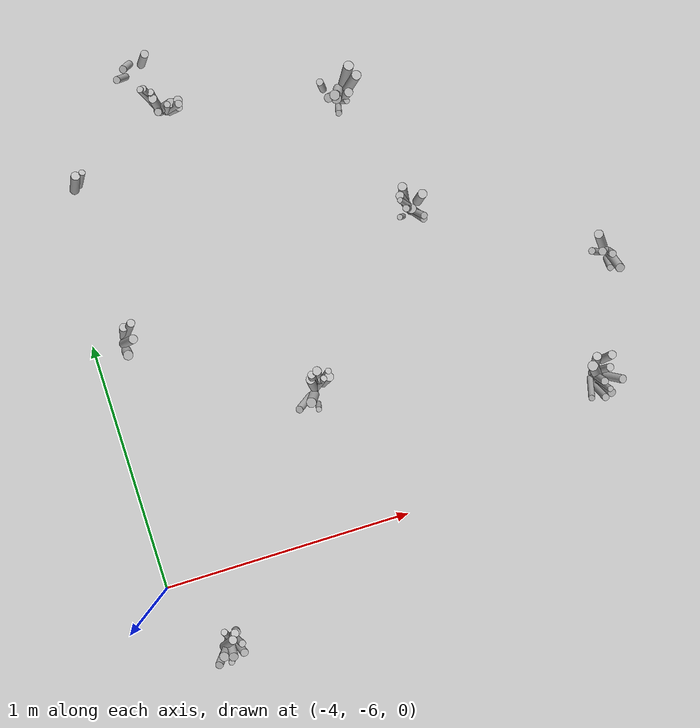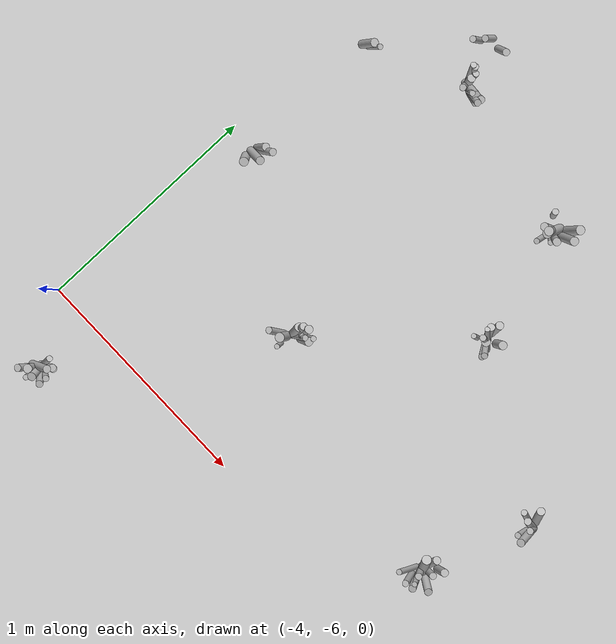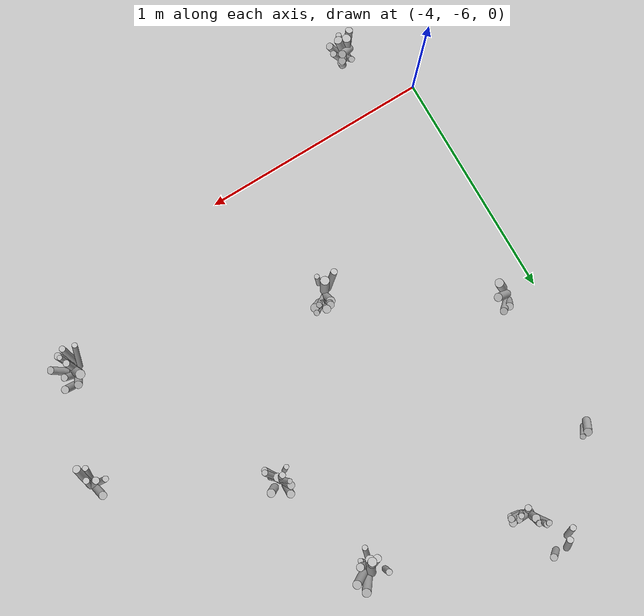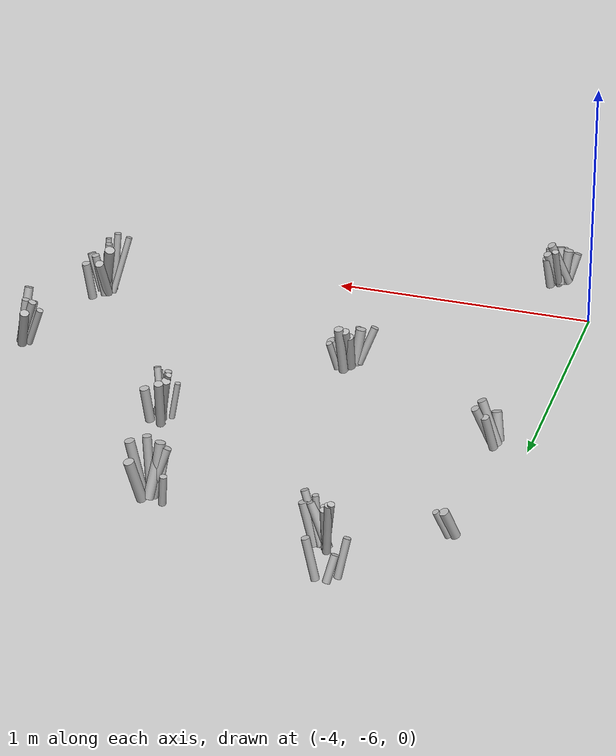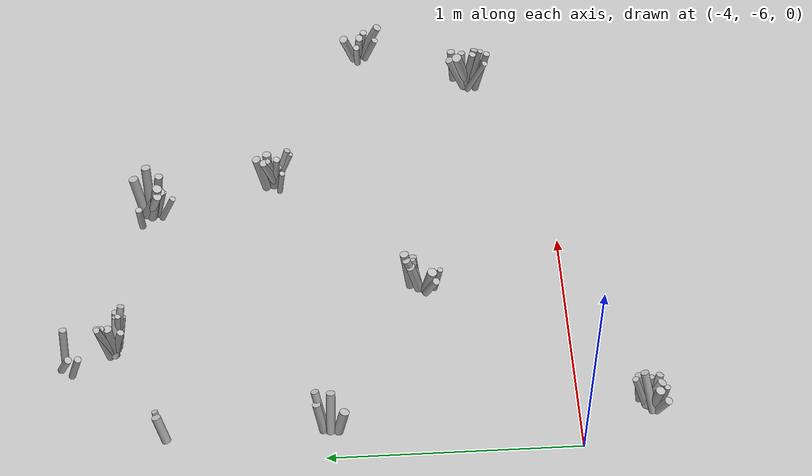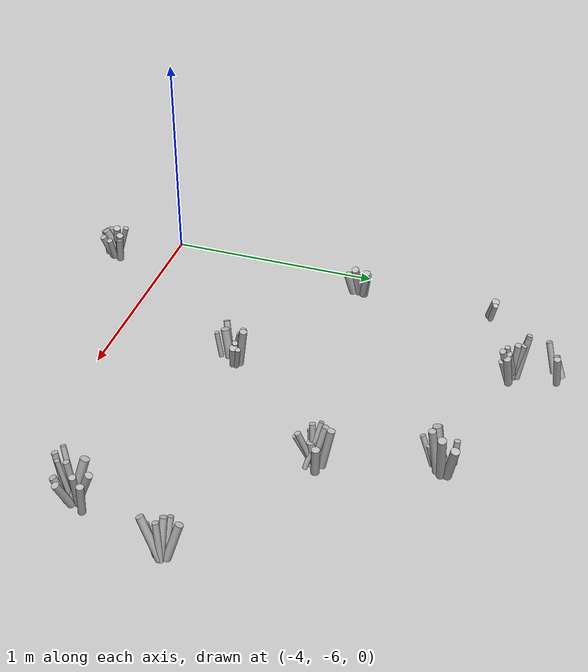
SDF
<sdf version="1.6">
 <world name="default">
  <model name="tussocks">
   <static>true</static>
   <link name="tuft19_0">
    <pose>-3.4690 -4.1610 0.0887 0 0.2247 1.6480</pose>
    <visual name="tuft19_0_v">
     <geometry><cylinder><radius>0.0136</radius><length>0.1928</length></cylinder></geometry>
     <material>
      <script>
       <uri>model://bushfire/materials/scripts</uri>
       <uri>model://bushfire/materials/textures</uri>
       <name>Bushfire/Foliage2</name>
      </script>
     </material>
    </visual>
   </link>
   <link name="tuft19_1">
    <pose>-3.4125 -4.2042 0.0995 0 0.3429 5.9019</pose>
    <visual name="tuft19_1_v">
     <geometry><cylinder><radius>0.0146</radius><length>0.2164</length></cylinder></geometry>
     <material>
      <script>
       <uri>model://bushfire/materials/scripts</uri>
       <uri>model://bushfire/materials/textures</uri>
       <name>Bushfire/Tussock</name>
      </script>
     </material>
    </visual>
   </link>
   <link name="tuft19_2">
    <pose>-3.4093 -4.2093 0.0696 0 0.3615 5.8465</pose>
    <visual name="tuft19_2_v">
     <geometry><cylinder><radius>0.0135</radius><length>0.1512</length></cylinder></geometry>
     <material>
      <script>
       <uri>model://bushfire/materials/scripts</uri>
       <uri>model://bushfire/materials/textures</uri>
       <name>Bushfire/Tussock</name>
      </script>
     </material>
    </visual>
   </link>
   <link name="tuft19_3">
    <pose>-3.4843 -4.1446 0.1037 0 0.1888 1.9952</pose>
    <visual name="tuft19_3_v">
     <geometry><cylinder><radius>0.0148</radius><length>0.2255</length></cylinder></geometry>
     <material>
      <script>
       <uri>model://bushfire/materials/scripts</uri>
       <uri>model://bushfire/materials/textures</uri>
       <name>Bushfire/Foliage2</name>
      </script>
     </material>
    </visual>
   </link>
   <link name="tuft19_4">
    <pose>-3.4671 -4.1962 0.0716 0 0.2293 4.7298</pose>
    <visual name="tuft19_4_v">
     <geometry><cylinder><radius>0.0144</radius><length>0.1557</length></cylinder></geometry>
     <material>
      <script>
       <uri>model://bushfire/materials/scripts</uri>
       <uri>model://bushfire/materials/textures</uri>
       <name>Bushfire/Foliage2</name>
      </script>
     </material>
    </visual>
   </link>
   <link name="tuft19_5">
    <pose>-3.4333 -4.2000 0.0934 0 0.1258 5.8017</pose>
    <visual name="tuft19_5_v">
     <geometry><cylinder><radius>0.0121</radius><length>0.2029</length></cylinder></geometry>
     <material>
      <script>
       <uri>model://bushfire/materials/scripts</uri>
       <uri>model://bushfire/materials/textures</uri>
       <name>Bushfire/Foliage2</name>
      </script>
     </material>
    </visual>
   </link>
   <link name="tuft19_6">
    <pose>-3.4422 -4.1890 0.0843 0 0.4013 6.0208</pose>
    <visual name="tuft19_6_v">
     <geometry><cylinder><radius>0.0174</radius><length>0.1832</length></cylinder></geometry>
     <material>
      <script>
       <uri>model://bushfire/materials/scripts</uri>
       <uri>model://bushfire/materials/textures</uri>
       <name>Bushfire/Foliage2</name>
      </script>
     </material>
    </visual>
   </link>
   <link name="tuft19_7">
    <pose>-3.4010 -4.1928 0.0802 0 0.2566 6.1247</pose>
    <visual name="tuft19_7_v">
     <geometry><cylinder><radius>0.0171</radius><length>0.1744</length></cylinder></geometry>
     <material>
      <script>
       <uri>model://bushfire/materials/scripts</uri>
       <uri>model://bushfire/materials/textures</uri>
       <name>Bushfire/Foliage2</name>
      </script>
     </material>
    </visual>
   </link>
   <link name="tuft19_8">
    <pose>-3.4684 -4.1744 0.0861 0 0.1007 1.7116</pose>
    <visual name="tuft19_8_v">
     <geometry><cylinder><radius>0.0171</radius><length>0.1871</length></cylinder></geometry>
     <material>
      <script>
       <uri>model://bushfire/materials/scripts</uri>
       <uri>model://bushfire/materials/textures</uri>
       <name>Bushfire/Tussock</name>
      </script>
     </material>
    </visual>
   </link>
   <link name="tuft19_9">
    <pose>-3.4860 -4.1522 0.1076 0 0.2693 2.1266</pose>
    <visual name="tuft19_9_v">
     <geometry><cylinder><radius>0.0129</radius><length>0.2338</length></cylinder></geometry>
     <material>
      <script>
       <uri>model://bushfire/materials/scripts</uri>
       <uri>model://bushfire/materials/textures</uri>
       <name>Bushfire/Foliage2</name>
      </script>
     </material>
    </visual>
   </link>
   <link name="tuft53_0">
    <pose>-2.1066 -5.6750 0.0812 0 0.1885 0.1733</pose>
    <visual name="tuft53_0_v">
     <geometry><cylinder><radius>0.0151</radius><length>0.1765</length></cylinder></geometry>
     <material>
      <script>
       <uri>model://bushfire/materials/scripts</uri>
       <uri>model://bushfire/materials/textures</uri>
       <name>Bushfire/Foliage2</name>
      </script>
     </material>
    </visual>
   </link>
   <link name="tuft53_1">
    <pose>-2.1301 -5.6504 0.0819 0 0.3875 1.4259</pose>
    <visual name="tuft53_1_v">
     <geometry><cylinder><radius>0.0172</radius><length>0.1780</length></cylinder></geometry>
     <material>
      <script>
       <uri>model://bushfire/materials/scripts</uri>
       <uri>model://bushfire/materials/textures</uri>
       <name>Bushfire/Tussock</name>
      </script>
     </material>
    </visual>
   </link>
   <link name="tuft53_2">
    <pose>-2.1248 -5.7283 0.1014 0 0.1930 4.9093</pose>
    <visual name="tuft53_2_v">
     <geometry><cylinder><radius>0.0111</radius><length>0.2204</length></cylinder></geometry>
     <material>
      <script>
       <uri>model://bushfire/materials/scripts</uri>
       <uri>model://bushfire/materials/textures</uri>
       <name>Bushfire/Foliage2</name>
      </script>
     </material>
    </visual>
   </link>
   <link name="tuft53_3">
    <pose>-2.1386 -5.6742 0.1061 0 0.3215 2.2075</pose>
    <visual name="tuft53_3_v">
     <geometry><cylinder><radius>0.0200</radius><length>0.2307</length></cylinder></geometry>
     <material>
      <script>
       <uri>model://bushfire/materials/scripts</uri>
       <uri>model://bushfire/materials/textures</uri>
       <name>Bushfire/Foliage2</name>
      </script>
     </material>
    </visual>
   </link>
   <link name="tuft53_4">
    <pose>-2.1331 -5.6994 0.0976 0 0.1511 4.7796</pose>
    <visual name="tuft53_4_v">
     <geometry><cylinder><radius>0.0146</radius><length>0.2122</length></cylinder></geometry>
     <material>
      <script>
       <uri>model://bushfire/materials/scripts</uri>
       <uri>model://bushfire/materials/textures</uri>
       <name>Bushfire/Foliage2</name>
      </script>
     </material>
    </visual>
   </link>
   <link name="tuft53_5">
    <pose>-2.1758 -5.7300 0.1082 0 0.3455 4.0229</pose>
    <visual name="tuft53_5_v">
     <geometry><cylinder><radius>0.0120</radius><length>0.2352</length></cylinder></geometry>
     <material>
      <script>
       <uri>model://bushfire/materials/scripts</uri>
       <uri>model://bushfire/materials/textures</uri>
       <name>Bushfire/Tussock</name>
      </script>
     </material>
    </visual>
   </link>
   <link name="tuft53_6">
    <pose>-2.1466 -5.7528 0.1074 0 0.1777 4.5464</pose>
    <visual name="tuft53_6_v">
     <geometry><cylinder><radius>0.0136</radius><length>0.2336</length></cylinder></geometry>
     <material>
      <script>
       <uri>model://bushfire/materials/scripts</uri>
       <uri>model://bushfire/materials/textures</uri>
       <name>Bushfire/Tussock</name>
      </script>
     </material>
    </visual>
   </link>
   <link name="tuft53_7">
    <pose>-2.0750 -5.6360 0.0727 0 0.1487 0.6355</pose>
    <visual name="tuft53_7_v">
     <geometry><cylinder><radius>0.0166</radius><length>0.1581</length></cylinder></geometry>
     <material>
      <script>
       <uri>model://bushfire/materials/scripts</uri>
       <uri>model://bushfire/materials/textures</uri>
       <name>Bushfire/Tussock</name>
      </script>
     </material>
    </visual>
   </link>
   <link name="tuft53_8">
    <pose>-2.0787 -5.7152 0.0710 0 0.4108 5.7185</pose>
    <visual name="tuft53_8_v">
     <geometry><cylinder><radius>0.0165</radius><length>0.1544</length></cylinder></geometry>
     <material>
      <script>
       <uri>model://bushfire/materials/scripts</uri>
       <uri>model://bushfire/materials/textures</uri>
       <name>Bushfire/Tussock</name>
      </script>
     </material>
    </visual>
   </link>
   <link name="tuft53_9">
    <pose>-2.1133 -5.7477 0.0625 0 0.3578 5.0137</pose>
    <visual name="tuft53_9_v">
     <geometry><cylinder><radius>0.0161</radius><length>0.1358</length></cylinder></geometry>
     <material>
      <script>
       <uri>model://bushfire/materials/scripts</uri>
       <uri>model://bushfire/materials/textures</uri>
       <name>Bushfire/Foliage2</name>
      </script>
     </material>
    </visual>
   </link>
   <link name="tuft83_2">
    <pose>-3.8692 -5.0644 0.0524 0 0.2704 5.3184</pose>
    <visual name="tuft83_2_v">
     <geometry><cylinder><radius>0.0193</radius><length>0.1139</length></cylinder></geometry>
     <material>
      <script>
       <uri>model://bushfire/materials/scripts</uri>
       <uri>model://bushfire/materials/textures</uri>
       <name>Bushfire/Foliage2</name>
      </script>
     </material>
    </visual>
   </link>
   <link name="tuft83_4">
    <pose>-3.8474 -5.0243 0.0865 0 0.3546 6.2202</pose>
    <visual name="tuft83_4_v">
     <geometry><cylinder><radius>0.0177</radius><length>0.1881</length></cylinder></geometry>
     <material>
      <script>
       <uri>model://bushfire/materials/scripts</uri>
       <uri>model://bushfire/materials/textures</uri>
       <name>Bushfire/Tussock</name>
      </script>
     </material>
    </visual>
   </link>
   <link name="tuft83_7">
    <pose>-3.8561 -4.9831 0.0680 0 0.2706 0.7210</pose>
    <visual name="tuft83_7_v">
     <geometry><cylinder><radius>0.0165</radius><length>0.1479</length></cylinder></geometry>
     <material>
      <script>
       <uri>model://bushfire/materials/scripts</uri>
       <uri>model://bushfire/materials/textures</uri>
       <name>Bushfire/Tussock</name>
      </script>
     </material>
    </visual>
   </link>
   <link name="tuft83_9">
    <pose>-3.8369 -4.9839 0.0871 0 0.4037 0.5378</pose>
    <visual name="tuft83_9_v">
     <geometry><cylinder><radius>0.0159</radius><length>0.1893</length></cylinder></geometry>
     <material>
      <script>
       <uri>model://bushfire/materials/scripts</uri>
       <uri>model://bushfire/materials/textures</uri>
       <name>Bushfire/Tussock</name>
      </script>
     </material>
    </visual>
   </link>
   <link name="tuft91_1">
    <pose>-3.5417 -3.9868 0.0484 0 0.4017 4.1701</pose>
    <visual name="tuft91_1_v">
     <geometry><cylinder><radius>0.0149</radius><length>0.1053</length></cylinder></geometry>
     <material>
      <script>
       <uri>model://bushfire/materials/scripts</uri>
       <uri>model://bushfire/materials/textures</uri>
       <name>Bushfire/Tussock</name>
      </script>
     </material>
    </visual>
   </link>
   <link name="tuft91_3">
    <pose>-3.5717 -4.0301 0.0707 0 0.2847 4.1144</pose>
    <visual name="tuft91_3_v">
     <geometry><cylinder><radius>0.0140</radius><length>0.1537</length></cylinder></geometry>
     <material>
      <script>
       <uri>model://bushfire/materials/scripts</uri>
       <uri>model://bushfire/materials/textures</uri>
       <name>Bushfire/Tussock</name>
      </script>
     </material>
    </visual>
   </link>
   <link name="tuft91_8">
    <pose>-3.4687 -3.9854 0.0771 0 0.2230 6.1999</pose>
    <visual name="tuft91_8_v">
     <geometry><cylinder><radius>0.0156</radius><length>0.1676</length></cylinder></geometry>
     <material>
      <script>
       <uri>model://bushfire/materials/scripts</uri>
       <uri>model://bushfire/materials/textures</uri>
       <name>Bushfire/Foliage2</name>
      </script>
     </material>
    </visual>
   </link>
   <link name="tuft108_0">
    <pose>-2.6483 -4.8522 0.0956 0 0.1530 3.4770</pose>
    <visual name="tuft108_0_v">
     <geometry><cylinder><radius>0.0137</radius><length>0.2078</length></cylinder></geometry>
     <material>
      <script>
       <uri>model://bushfire/materials/scripts</uri>
       <uri>model://bushfire/materials/textures</uri>
       <name>Bushfire/Tussock</name>
      </script>
     </material>
    </visual>
   </link>
   <link name="tuft108_1">
    <pose>-2.6407 -4.8469 0.1030 0 0.4087 2.5271</pose>
    <visual name="tuft108_1_v">
     <geometry><cylinder><radius>0.0111</radius><length>0.2239</length></cylinder></geometry>
     <material>
      <script>
       <uri>model://bushfire/materials/scripts</uri>
       <uri>model://bushfire/materials/textures</uri>
       <name>Bushfire/Tussock</name>
      </script>
     </material>
    </visual>
   </link>
   <link name="tuft108_2">
    <pose>-2.6812 -4.8719 0.0680 0 0.1697 3.6361</pose>
    <visual name="tuft108_2_v">
     <geometry><cylinder><radius>0.0111</radius><length>0.1478</length></cylinder></geometry>
     <material>
      <script>
       <uri>model://bushfire/materials/scripts</uri>
       <uri>model://bushfire/materials/textures</uri>
       <name>Bushfire/Tussock</name>
      </script>
     </material>
    </visual>
   </link>
   <link name="tuft108_3">
    <pose>-2.6235 -4.8801 0.0823 0 0.4166 5.1492</pose>
    <visual name="tuft108_3_v">
     <geometry><cylinder><radius>0.0138</radius><length>0.1789</length></cylinder></geometry>
     <material>
      <script>
       <uri>model://bushfire/materials/scripts</uri>
       <uri>model://bushfire/materials/textures</uri>
       <name>Bushfire/Tussock</name>
      </script>
     </material>
    </visual>
   </link>
   <link name="tuft108_4">
    <pose>-2.5903 -4.8215 0.0652 0 0.1366 0.5171</pose>
    <visual name="tuft108_4_v">
     <geometry><cylinder><radius>0.0182</radius><length>0.1418</length></cylinder></geometry>
     <material>
      <script>
       <uri>model://bushfire/materials/scripts</uri>
       <uri>model://bushfire/materials/textures</uri>
       <name>Bushfire/Foliage2</name>
      </script>
     </material>
    </visual>
   </link>
   <link name="tuft108_5">
    <pose>-2.6488 -4.7926 0.0925 0 0.2001 1.7576</pose>
    <visual name="tuft108_5_v">
     <geometry><cylinder><radius>0.0172</radius><length>0.2010</length></cylinder></geometry>
     <material>
      <script>
       <uri>model://bushfire/materials/scripts</uri>
       <uri>model://bushfire/materials/textures</uri>
       <name>Bushfire/Foliage2</name>
      </script>
     </material>
    </visual>
   </link>
   <link name="tuft108_6">
    <pose>-2.6383 -4.8503 0.0573 0 0.1134 4.6621</pose>
    <visual name="tuft108_6_v">
     <geometry><cylinder><radius>0.0189</radius><length>0.1247</length></cylinder></geometry>
     <material>
      <script>
       <uri>model://bushfire/materials/scripts</uri>
       <uri>model://bushfire/materials/textures</uri>
       <name>Bushfire/Tussock</name>
      </script>
     </material>
    </visual>
   </link>
   <link name="tuft108_7">
    <pose>-2.6526 -4.8289 0.0929 0 0.3243 2.2012</pose>
    <visual name="tuft108_7_v">
     <geometry><cylinder><radius>0.0166</radius><length>0.2020</length></cylinder></geometry>
     <material>
      <script>
       <uri>model://bushfire/materials/scripts</uri>
       <uri>model://bushfire/materials/textures</uri>
       <name>Bushfire/Foliage2</name>
      </script>
     </material>
    </visual>
   </link>
   <link name="tuft108_8">
    <pose>-2.6217 -4.8754 0.0903 0 0.3350 5.2646</pose>
    <visual name="tuft108_8_v">
     <geometry><cylinder><radius>0.0134</radius><length>0.1964</length></cylinder></geometry>
     <material>
      <script>
       <uri>model://bushfire/materials/scripts</uri>
       <uri>model://bushfire/materials/textures</uri>
       <name>Bushfire/Foliage2</name>
      </script>
     </material>
    </visual>
   </link>
   <link name="tuft114_0">
    <pose>-2.7540 -4.3603 0.1064 0 0.1257 5.4304</pose>
    <visual name="tuft114_0_v">
     <geometry><cylinder><radius>0.0169</radius><length>0.2312</length></cylinder></geometry>
     <material>
      <script>
       <uri>model://bushfire/materials/scripts</uri>
       <uri>model://bushfire/materials/textures</uri>
       <name>Bushfire/Foliage2</name>
      </script>
     </material>
    </visual>
   </link>
   <link name="tuft114_1">
    <pose>-2.8295 -4.2868 0.0567 0 0.1007 2.4118</pose>
    <visual name="tuft114_1_v">
     <geometry><cylinder><radius>0.0138</radius><length>0.1232</length></cylinder></geometry>
     <material>
      <script>
       <uri>model://bushfire/materials/scripts</uri>
       <uri>model://bushfire/materials/textures</uri>
       <name>Bushfire/Foliage2</name>
      </script>
     </material>
    </visual>
   </link>
   <link name="tuft114_2">
    <pose>-2.7621 -4.3702 0.0630 0 0.2345 5.1103</pose>
    <visual name="tuft114_2_v">
     <geometry><cylinder><radius>0.0114</radius><length>0.1370</length></cylinder></geometry>
     <material>
      <script>
       <uri>model://bushfire/materials/scripts</uri>
       <uri>model://bushfire/materials/textures</uri>
       <name>Bushfire/Tussock</name>
      </script>
     </material>
    </visual>
   </link>
   <link name="tuft114_3">
    <pose>-2.7282 -4.2815 0.0829 0 0.2766 0.8062</pose>
    <visual name="tuft114_3_v">
     <geometry><cylinder><radius>0.0198</radius><length>0.1802</length></cylinder></geometry>
     <material>
      <script>
       <uri>model://bushfire/materials/scripts</uri>
       <uri>model://bushfire/materials/textures</uri>
       <name>Bushfire/Foliage2</name>
      </script>
     </material>
    </visual>
   </link>
   <link name="tuft114_4">
    <pose>-2.7867 -4.3469 0.1002 0 0.1840 4.1342</pose>
    <visual name="tuft114_4_v">
     <geometry><cylinder><radius>0.0195</radius><length>0.2178</length></cylinder></geometry>
     <material>
      <script>
       <uri>model://bushfire/materials/scripts</uri>
       <uri>model://bushfire/materials/textures</uri>
       <name>Bushfire/Tussock</name>
      </script>
     </material>
    </visual>
   </link>
   <link name="tuft114_5">
    <pose>-2.7807 -4.3405 0.0915 0 0.3707 4.3267</pose>
    <visual name="tuft114_5_v">
     <geometry><cylinder><radius>0.0198</radius><length>0.1988</length></cylinder></geometry>
     <material>
      <script>
       <uri>model://bushfire/materials/scripts</uri>
       <uri>model://bushfire/materials/textures</uri>
       <name>Bushfire/Foliage2</name>
      </script>
     </material>
    </visual>
   </link>
   <link name="tuft114_6">
    <pose>-2.7929 -4.3432 0.0931 0 0.3641 3.7272</pose>
    <visual name="tuft114_6_v">
     <geometry><cylinder><radius>0.0172</radius><length>0.2025</length></cylinder></geometry>
     <material>
      <script>
       <uri>model://bushfire/materials/scripts</uri>
       <uri>model://bushfire/materials/textures</uri>
       <name>Bushfire/Foliage2</name>
      </script>
     </material>
    </visual>
   </link>
   <link name="tuft114_7">
    <pose>-2.7202 -4.3221 0.1082 0 0.2035 0.1884</pose>
    <visual name="tuft114_7_v">
     <geometry><cylinder><radius>0.0188</radius><length>0.2353</length></cylinder></geometry>
     <material>
      <script>
       <uri>model://bushfire/materials/scripts</uri>
       <uri>model://bushfire/materials/textures</uri>
       <name>Bushfire/Tussock</name>
      </script>
     </material>
    </visual>
   </link>
   <link name="tuft114_8">
    <pose>-2.7937 -4.3978 0.0693 0 0.3530 4.4709</pose>
    <visual name="tuft114_8_v">
     <geometry><cylinder><radius>0.0120</radius><length>0.1507</length></cylinder></geometry>
     <material>
      <script>
       <uri>model://bushfire/materials/scripts</uri>
       <uri>model://bushfire/materials/textures</uri>
       <name>Bushfire/Foliage2</name>
      </script>
     </material>
    </visual>
   </link>
   <link name="tuft122_0">
    <pose>-1.9429 -5.2460 0.0834 0 0.1625 3.9162</pose>
    <visual name="tuft122_0_v">
     <geometry><cylinder><radius>0.0142</radius><length>0.1812</length></cylinder></geometry>
     <material>
      <script>
       <uri>model://bushfire/materials/scripts</uri>
       <uri>model://bushfire/materials/textures</uri>
       <name>Bushfire/Tussock</name>
      </script>
     </material>
    </visual>
   </link>
   <link name="tuft122_1">
    <pose>-1.9615 -5.2365 0.0868 0 0.2901 3.1369</pose>
    <visual name="tuft122_1_v">
     <geometry><cylinder><radius>0.0155</radius><length>0.1887</length></cylinder></geometry>
     <material>
      <script>
       <uri>model://bushfire/materials/scripts</uri>
       <uri>model://bushfire/materials/textures</uri>
       <name>Bushfire/Foliage2</name>
      </script>
     </material>
    </visual>
   </link>
   <link name="tuft122_2">
    <pose>-1.9596 -5.2843 0.0687 0 0.3219 4.2097</pose>
    <visual name="tuft122_2_v">
     <geometry><cylinder><radius>0.0129</radius><length>0.1494</length></cylinder></geometry>
     <material>
      <script>
       <uri>model://bushfire/materials/scripts</uri>
       <uri>model://bushfire/materials/textures</uri>
       <name>Bushfire/Tussock</name>
      </script>
     </material>
    </visual>
   </link>
   <link name="tuft122_3">
    <pose>-1.9963 -5.2266 0.0759 0 0.3323 2.9840</pose>
    <visual name="tuft122_3_v">
     <geometry><cylinder><radius>0.0133</radius><length>0.1650</length></cylinder></geometry>
     <material>
      <script>
       <uri>model://bushfire/materials/scripts</uri>
       <uri>model://bushfire/materials/textures</uri>
       <name>Bushfire/Foliage2</name>
      </script>
     </material>
    </visual>
   </link>
   <link name="tuft122_4">
    <pose>-1.9400 -5.2788 0.0964 0 0.3755 4.5562</pose>
    <visual name="tuft122_4_v">
     <geometry><cylinder><radius>0.0171</radius><length>0.2095</length></cylinder></geometry>
     <material>
      <script>
       <uri>model://bushfire/materials/scripts</uri>
       <uri>model://bushfire/materials/textures</uri>
       <name>Bushfire/Tussock</name>
      </script>
     </material>
    </visual>
   </link>
   <link name="tuft122_6">
    <pose>-1.9637 -5.1928 0.0810 0 0.3414 2.1750</pose>
    <visual name="tuft122_6_v">
     <geometry><cylinder><radius>0.0176</radius><length>0.1761</length></cylinder></geometry>
     <material>
      <script>
       <uri>model://bushfire/materials/scripts</uri>
       <uri>model://bushfire/materials/textures</uri>
       <name>Bushfire/Foliage2</name>
      </script>
     </material>
    </visual>
   </link>
   <link name="tuft139_0">
    <pose>-3.7811 -6.2777 0.0544 0 0.2596 6.0672</pose>
    <visual name="tuft139_0_v">
     <geometry><cylinder><radius>0.0136</radius><length>0.1182</length></cylinder></geometry>
     <material>
      <script>
       <uri>model://bushfire/materials/scripts</uri>
       <uri>model://bushfire/materials/textures</uri>
       <name>Bushfire/Foliage2</name>
      </script>
     </material>
    </visual>
   </link>
   <link name="tuft139_1">
    <pose>-3.8213 -6.2673 0.0889 0 0.4077 0.5743</pose>
    <visual name="tuft139_1_v">
     <geometry><cylinder><radius>0.0165</radius><length>0.1932</length></cylinder></geometry>
     <material>
      <script>
       <uri>model://bushfire/materials/scripts</uri>
       <uri>model://bushfire/materials/textures</uri>
       <name>Bushfire/Tussock</name>
      </script>
     </material>
    </visual>
   </link>
   <link name="tuft139_2">
    <pose>-3.7849 -6.3000 0.0620 0 0.3436 5.5941</pose>
    <visual name="tuft139_2_v">
     <geometry><cylinder><radius>0.0156</radius><length>0.1349</length></cylinder></geometry>
     <material>
      <script>
       <uri>model://bushfire/materials/scripts</uri>
       <uri>model://bushfire/materials/textures</uri>
       <name>Bushfire/Tussock</name>
      </script>
     </material>
    </visual>
   </link>
   <link name="tuft139_3">
    <pose>-3.8254 -6.3291 0.0591 0 0.1170 4.6761</pose>
    <visual name="tuft139_3_v">
     <geometry><cylinder><radius>0.0119</radius><length>0.1284</length></cylinder></geometry>
     <material>
      <script>
       <uri>model://bushfire/materials/scripts</uri>
       <uri>model://bushfire/materials/textures</uri>
       <name>Bushfire/Foliage2</name>
      </script>
     </material>
    </visual>
   </link>
   <link name="tuft139_4">
    <pose>-3.8175 -6.2356 0.0837 0 0.2976 1.4011</pose>
    <visual name="tuft139_4_v">
     <geometry><cylinder><radius>0.0129</radius><length>0.1819</length></cylinder></geometry>
     <material>
      <script>
       <uri>model://bushfire/materials/scripts</uri>
       <uri>model://bushfire/materials/textures</uri>
       <name>Bushfire/Foliage2</name>
      </script>
     </material>
    </visual>
   </link>
   <link name="tuft139_5">
    <pose>-3.7993 -6.2477 0.0721 0 0.3746 0.7174</pose>
    <visual name="tuft139_5_v">
     <geometry><cylinder><radius>0.0161</radius><length>0.1567</length></cylinder></geometry>
     <material>
      <script>
       <uri>model://bushfire/materials/scripts</uri>
       <uri>model://bushfire/materials/textures</uri>
       <name>Bushfire/Tussock</name>
      </script>
     </material>
    </visual>
   </link>
   <link name="tuft139_6">
    <pose>-3.8179 -6.2891 0.0680 0 0.3874 4.9620</pose>
    <visual name="tuft139_6_v">
     <geometry><cylinder><radius>0.0182</radius><length>0.1478</length></cylinder></geometry>
     <material>
      <script>
       <uri>model://bushfire/materials/scripts</uri>
       <uri>model://bushfire/materials/textures</uri>
       <name>Bushfire/Tussock</name>
      </script>
     </material>
    </visual>
   </link>
   <link name="tuft139_7">
    <pose>-3.8642 -6.3189 0.0532 0 0.3857 4.0295</pose>
    <visual name="tuft139_7_v">
     <geometry><cylinder><radius>0.0158</radius><length>0.1156</length></cylinder></geometry>
     <material>
      <script>
       <uri>model://bushfire/materials/scripts</uri>
       <uri>model://bushfire/materials/textures</uri>
       <name>Bushfire/Foliage2</name>
      </script>
     </material>
    </visual>
   </link>
   <link name="tuft139_8">
    <pose>-3.7831 -6.2368 0.0596 0 0.1589 0.6687</pose>
    <visual name="tuft139_8_v">
     <geometry><cylinder><radius>0.0165</radius><length>0.1296</length></cylinder></geometry>
     <material>
      <script>
       <uri>model://bushfire/materials/scripts</uri>
       <uri>model://bushfire/materials/textures</uri>
       <name>Bushfire/Tussock</name>
      </script>
     </material>
    </visual>
   </link>
   <link name="tuft139_9">
    <pose>-3.8401 -6.2959 0.0636 0 0.1715 4.1604</pose>
    <visual name="tuft139_9_v">
     <geometry><cylinder><radius>0.0189</radius><length>0.1383</length></cylinder></geometry>
     <material>
      <script>
       <uri>model://bushfire/materials/scripts</uri>
       <uri>model://bushfire/materials/textures</uri>
       <name>Bushfire/Foliage2</name>
      </script>
     </material>
    </visual>
   </link>
   <link name="tuft164_2">
    <pose>-3.8424 -4.3583 0.0563 0 0.4161 0.5909</pose>
    <visual name="tuft164_2_v">
     <geometry><cylinder><radius>0.0125</radius><length>0.1224</length></cylinder></geometry>
     <material>
      <script>
       <uri>model://bushfire/materials/scripts</uri>
       <uri>model://bushfire/materials/textures</uri>
       <name>Bushfire/Foliage2</name>
      </script>
     </material>
    </visual>
   </link>
   <link name="tuft164_7">
    <pose>-3.8681 -4.3670 0.0571 0 0.4126 0.7526</pose>
    <visual name="tuft164_7_v">
     <geometry><cylinder><radius>0.0183</radius><length>0.1241</length></cylinder></geometry>
     <material>
      <script>
       <uri>model://bushfire/materials/scripts</uri>
       <uri>model://bushfire/materials/textures</uri>
       <name>Bushfire/Foliage2</name>
      </script>
     </material>
    </visual>
   </link>
   <link name="tuft177_0">
    <pose>-3.2069 -5.3953 0.0720 0 0.2497 1.6329</pose>
    <visual name="tuft177_0_v">
     <geometry><cylinder><radius>0.0188</radius><length>0.1566</length></cylinder></geometry>
     <material>
      <script>
       <uri>model://bushfire/materials/scripts</uri>
       <uri>model://bushfire/materials/textures</uri>
       <name>Bushfire/Foliage2</name>
      </script>
     </material>
    </visual>
   </link>
   <link name="tuft177_1">
    <pose>-3.1793 -5.3989 0.0540 0 0.2192 0.7138</pose>
    <visual name="tuft177_1_v">
     <geometry><cylinder><radius>0.0135</radius><length>0.1173</length></cylinder></geometry>
     <material>
      <script>
       <uri>model://bushfire/materials/scripts</uri>
       <uri>model://bushfire/materials/textures</uri>
       <name>Bushfire/Tussock</name>
      </script>
     </material>
    </visual>
   </link>
   <link name="tuft177_2">
    <pose>-3.2116 -5.4871 0.0602 0 0.1510 4.6171</pose>
    <visual name="tuft177_2_v">
     <geometry><cylinder><radius>0.0110</radius><length>0.1308</length></cylinder></geometry>
     <material>
      <script>
       <uri>model://bushfire/materials/scripts</uri>
       <uri>model://bushfire/materials/textures</uri>
       <name>Bushfire/Tussock</name>
      </script>
     </material>
    </visual>
   </link>
   <link name="tuft177_3">
    <pose>-3.1798 -5.4032 0.0639 0 0.3812 0.6200</pose>
    <visual name="tuft177_3_v">
     <geometry><cylinder><radius>0.0126</radius><length>0.1390</length></cylinder></geometry>
     <material>
      <script>
       <uri>model://bushfire/materials/scripts</uri>
       <uri>model://bushfire/materials/textures</uri>
       <name>Bushfire/Tussock</name>
      </script>
     </material>
    </visual>
   </link>
   <link name="tuft177_4">
    <pose>-3.2244 -5.4511 0.0668 0 0.1992 4.1397</pose>
    <visual name="tuft177_4_v">
     <geometry><cylinder><radius>0.0198</radius><length>0.1451</length></cylinder></geometry>
     <material>
      <script>
       <uri>model://bushfire/materials/scripts</uri>
       <uri>model://bushfire/materials/textures</uri>
       <name>Bushfire/Tussock</name>
      </script>
     </material>
    </visual>
   </link>
   <link name="tuft177_5">
    <pose>-3.1472 -5.3761 0.0558 0 0.2886 0.6628</pose>
    <visual name="tuft177_5_v">
     <geometry><cylinder><radius>0.0123</radius><length>0.1213</length></cylinder></geometry>
     <material>
      <script>
       <uri>model://bushfire/materials/scripts</uri>
       <uri>model://bushfire/materials/textures</uri>
       <name>Bushfire/Foliage2</name>
      </script>
     </material>
    </visual>
   </link>
   <link name="tuft177_6">
    <pose>-3.2016 -5.3890 0.0876 0 0.3107 1.4573</pose>
    <visual name="tuft177_6_v">
     <geometry><cylinder><radius>0.0160</radius><length>0.1904</length></cylinder></geometry>
     <material>
      <script>
       <uri>model://bushfire/materials/scripts</uri>
       <uri>model://bushfire/materials/textures</uri>
       <name>Bushfire/Tussock</name>
      </script>
     </material>
    </visual>
   </link>
   <link name="tuft177_7">
    <pose>-3.1809 -5.3668 0.0912 0 0.1574 1.1505</pose>
    <visual name="tuft177_7_v">
     <geometry><cylinder><radius>0.0176</radius><length>0.1982</length></cylinder></geometry>
     <material>
      <script>
       <uri>model://bushfire/materials/scripts</uri>
       <uri>model://bushfire/materials/textures</uri>
       <name>Bushfire/Tussock</name>
      </script>
     </material>
    </visual>
   </link>
   <link name="tuft177_8">
    <pose>-3.2583 -5.4574 0.0731 0 0.4064 3.7380</pose>
    <visual name="tuft177_8_v">
     <geometry><cylinder><radius>0.0147</radius><length>0.1589</length></cylinder></geometry>
     <material>
      <script>
       <uri>model://bushfire/materials/scripts</uri>
       <uri>model://bushfire/materials/textures</uri>
       <name>Bushfire/Tussock</name>
      </script>
     </material>
    </visual>
   </link>
   <link name="tuft177_9">
    <pose>-3.1534 -5.3959 0.0567 0 0.3016 0.4566</pose>
    <visual name="tuft177_9_v">
     <geometry><cylinder><radius>0.0184</radius><length>0.1233</length></cylinder></geometry>
     <material>
      <script>
       <uri>model://bushfire/materials/scripts</uri>
       <uri>model://bushfire/materials/textures</uri>
       <name>Bushfire/Foliage2</name>
      </script>
     </material>
    </visual>
   </link>
  </model>
 </world>
</sdf>
